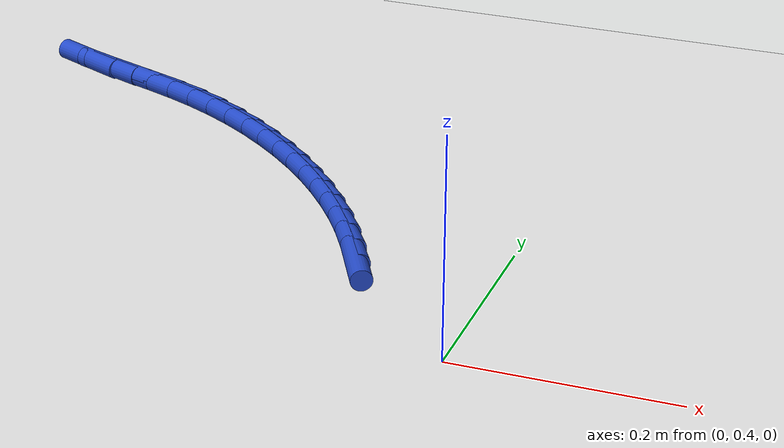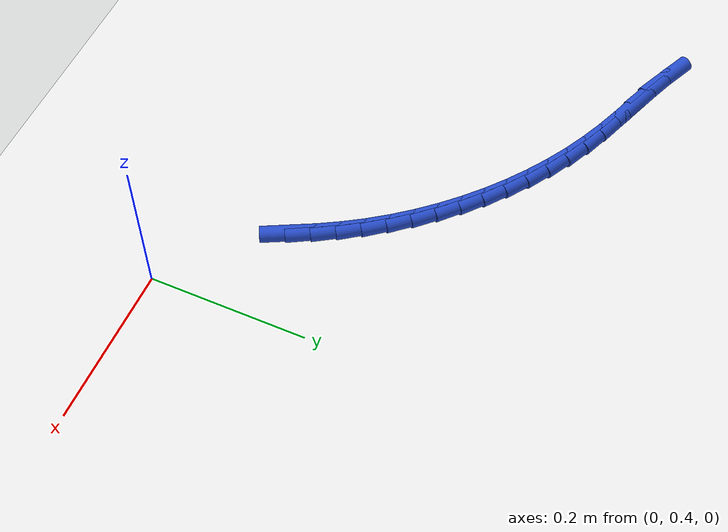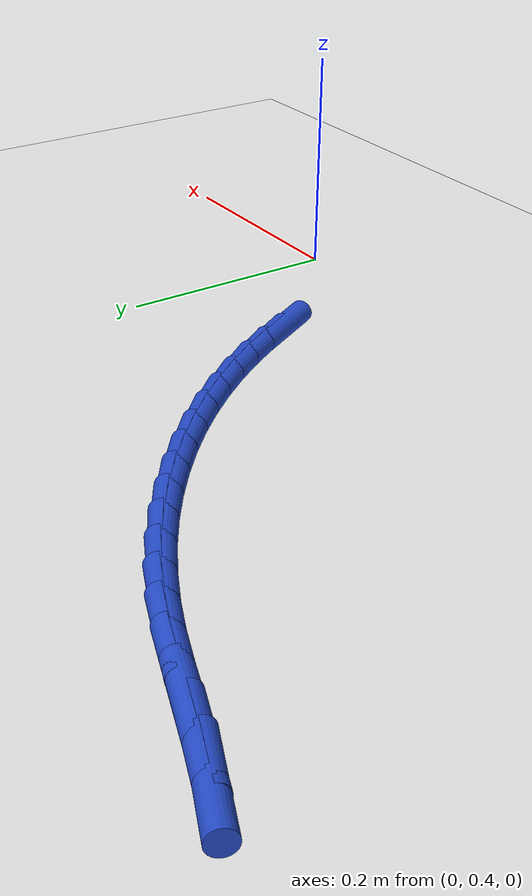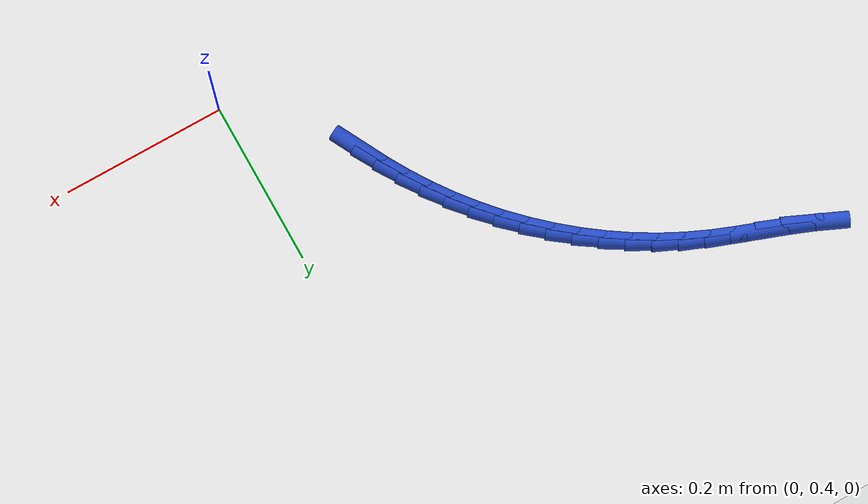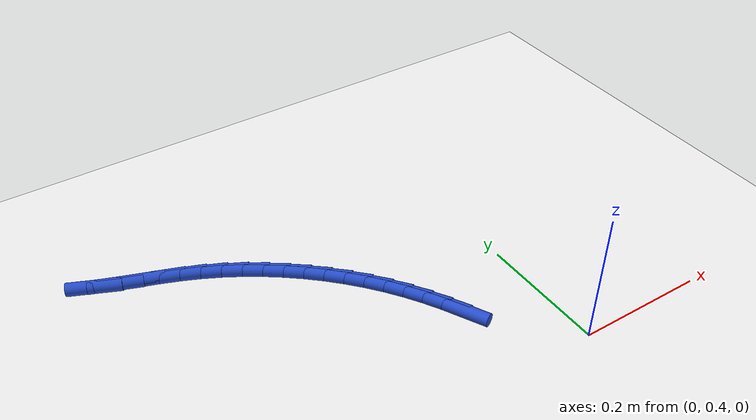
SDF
<sdf version="1.6">
 <world name="default">
  <model name="ground_plane">
   <static>1</static>
   <link name="link">
    <collision name="collision">
     <geometry><plane><normal>0 0 1</normal><size>100 100</size></plane></geometry>
     <surface><friction><ode><mu>100</mu><mu2>50</mu2></ode></friction></surface>
    </collision>
    <visual name="visual">
     <cast_shadows>0</cast_shadows>
     <geometry><plane><normal>0 0 1</normal><size>100 100</size></plane></geometry>
     <material>
      <script><uri>file://media/materials/scripts/gazebo.material</uri><name>Gazebo/WhiteGlow</name></script>
     </material>
    </visual>
   </link>
  </model>
  <model name="line">
   <link name="link_18">
    <pose>-0.12087121590674191 0.5258306479101631 0.01 0 1.57 -1.0924491869391255</pose>
    <collision name="collision">
     <geometry><cylinder><radius>0.01</radius><length>0.08</length></cylinder></geometry>
    </collision>
    <visual name="visual">
     <material>
      <script><name>Gazebo/Blue</name><uri>file://media/materials/scripts/gazebo.material</uri></script>
     </material>
     <geometry><cylinder><radius>0.01</radius><length>0.08</length></cylinder></geometry>
    </visual>
   </link>
   <link name="link_19">
    <pose>-0.13466433194934374 0.5524320018764258 0.01 0 1.57 -1.0466412151511646</pose>
    <collision name="collision">
     <geometry><cylinder><radius>0.01</radius><length>0.08</length></cylinder></geometry>
    </collision>
    <visual name="visual">
     <material>
      <script><name>Gazebo/Blue</name><uri>file://media/materials/scripts/gazebo.material</uri></script>
     </material>
     <geometry><cylinder><radius>0.01</radius><length>0.08</length></cylinder></geometry>
    </visual>
   </link>
   <link name="link_20">
    <pose>-0.1496651760401632 0.5783808760896336 0.01 0 1.57 -0.9973470188442682</pose>
    <collision name="collision">
     <geometry><cylinder><radius>0.01</radius><length>0.08</length></cylinder></geometry>
    </collision>
    <visual name="visual">
     <material>
      <script><name>Gazebo/Blue</name><uri>file://media/materials/scripts/gazebo.material</uri></script>
     </material>
     <geometry><cylinder><radius>0.01</radius><length>0.08</length></cylinder></geometry>
    </visual>
   </link>
   <link name="link_21">
    <pose>-0.16596167017055868 0.6036136711053701 0.01 0 1.57 -0.9453736026981899</pose>
    <collision name="collision">
     <geometry><cylinder><radius>0.01</radius><length>0.08</length></cylinder></geometry>
    </collision>
    <visual name="visual">
     <material>
      <script><name>Gazebo/Blue</name><uri>file://media/materials/scripts/gazebo.material</uri></script>
     </material>
     <geometry><cylinder><radius>0.01</radius><length>0.08</length></cylinder></geometry>
    </visual>
   </link>
   <link name="link_22">
    <pose>-0.18361828702493266 0.628064504447458 0.01 0 1.57 -0.8934376284578187</pose>
    <collision name="collision">
     <geometry><cylinder><radius>0.01</radius><length>0.08</length></cylinder></geometry>
    </collision>
    <visual name="visual">
     <material>
      <script><name>Gazebo/Blue</name><uri>file://media/materials/scripts/gazebo.material</uri></script>
     </material>
     <geometry><cylinder><radius>0.01</radius><length>0.08</length></cylinder></geometry>
    </visual>
   </link>
   <link name="link_23">
    <pose>-0.20259395701942093 0.6516572180119145 0.01 0 1.57 -0.8420445888615028</pose>
    <collision name="collision">
     <geometry><cylinder><radius>0.01</radius><length>0.08</length></cylinder></geometry>
    </collision>
    <visual name="visual">
     <material>
      <script><name>Gazebo/Blue</name><uri>file://media/materials/scripts/gazebo.material</uri></script>
     </material>
     <geometry><cylinder><radius>0.01</radius><length>0.08</length></cylinder></geometry>
    </visual>
   </link>
   <link name="link_24">
    <pose>-0.22281793014236864 0.6743127639991473 0.01 0 1.57 -0.7909232255327905</pose>
    <collision name="collision">
     <geometry><cylinder><radius>0.01</radius><length>0.08</length></cylinder></geometry>
    </collision>
    <visual name="visual">
     <material>
      <script><name>Gazebo/Blue</name><uri>file://media/materials/scripts/gazebo.material</uri></script>
     </material>
     <geometry><cylinder><radius>0.01</radius><length>0.08</length></cylinder></geometry>
    </visual>
   </link>
   <link name="link_25">
    <pose>-0.24421945477810603 0.6959520944533982 0.01 0 1.57 -0.7398049628768644</pose>
    <collision name="collision">
     <geometry><cylinder><radius>0.01</radius><length>0.08</length></cylinder></geometry>
    </collision>
    <visual name="visual">
     <material>
      <script><name>Gazebo/Blue</name><uri>file://media/materials/scripts/gazebo.material</uri></script>
     </material>
     <geometry><cylinder><radius>0.01</radius><length>0.08</length></cylinder></geometry>
    </visual>
   </link>
   <link name="link_26">
    <pose>-0.26672777931096314 0.7164961614189078 0.01 0 1.57 -0.688424894510176</pose>
    <collision name="collision">
     <geometry><cylinder><radius>0.01</radius><length>0.08</length></cylinder></geometry>
    </collision>
    <visual name="visual">
     <material>
      <script><name>Gazebo/Blue</name><uri>file://media/materials/scripts/gazebo.material</uri></script>
     </material>
     <geometry><cylinder><radius>0.01</radius><length>0.08</length></cylinder></geometry>
    </visual>
   </link>
   <link name="link_27">
    <pose>-0.2902721521252701 0.7358659169399174 0.01 0 1.57 -0.6365228189762627</pose>
    <collision name="collision">
     <geometry><cylinder><radius>0.01</radius><length>0.08</length></cylinder></geometry>
    </collision>
    <visual name="visual">
     <material>
      <script><name>Gazebo/Blue</name><uri>file://media/materials/scripts/gazebo.material</uri></script>
     </material>
     <geometry><cylinder><radius>0.01</radius><length>0.08</length></cylinder></geometry>
    </visual>
   </link>
   <link name="link_28">
    <pose>-0.3147818216053569 0.7539823130606679 0.01 0 1.57 -0.5838446735683452</pose>
    <collision name="collision">
     <geometry><cylinder><radius>0.01</radius><length>0.08</length></cylinder></geometry>
    </collision>
    <visual name="visual">
     <material>
      <script><name>Gazebo/Blue</name><uri>file://media/materials/scripts/gazebo.material</uri></script>
     </material>
     <geometry><cylinder><radius>0.01</radius><length>0.08</length></cylinder></geometry>
    </visual>
   </link>
   <link name="link_29">
    <pose>-0.3401860361355535 0.7707663018254001 0.01 0 1.57 -0.5301446679307832</pose>
    <collision name="collision">
     <geometry><cylinder><radius>0.01</radius><length>0.08</length></cylinder></geometry>
    </collision>
    <visual name="visual">
     <material>
      <script><name>Gazebo/Blue</name><uri>file://media/materials/scripts/gazebo.material</uri></script>
     </material>
     <geometry><cylinder><radius>0.01</radius><length>0.08</length></cylinder></geometry>
    </visual>
   </link>
   <link name="link_30">
    <pose>-0.36641404410019035 0.7861388352783555 0.01 0 1.57 -0.47518841329558575</pose>
    <collision name="collision">
     <geometry><cylinder><radius>0.01</radius><length>0.08</length></cylinder></geometry>
    </collision>
    <visual name="visual">
     <material>
      <script><name>Gazebo/Blue</name><uri>file://media/materials/scripts/gazebo.material</uri></script>
     </material>
     <geometry><cylinder><radius>0.01</radius><length>0.08</length></cylinder></geometry>
    </visual>
   </link>
   <link name="link_31">
    <pose>-0.3933950938835974 0.8000208654637748 0.01 0 1.57 -0.4190884374159416</pose>
    <collision name="collision">
     <geometry><cylinder><radius>0.01</radius><length>0.08</length></cylinder></geometry>
    </collision>
    <visual name="visual">
     <material>
      <script><name>Gazebo/Blue</name><uri>file://media/materials/scripts/gazebo.material</uri></script>
     </material>
     <geometry><cylinder><radius>0.01</radius><length>0.08</length></cylinder></geometry>
    </visual>
   </link>
   <link name="link_32">
    <pose>-0.42105552526885476 0.8123430244261538 0.01 0 1.57 -0.3726044671047308</pose>
    <collision name="collision">
     <geometry><cylinder><radius>0.01</radius><length>0.08</length></cylinder></geometry>
    </collision>
    <visual name="visual">
     <material>
      <script><name>Gazebo/Blue</name><uri>file://media/materials/scripts/gazebo.material</uri></script>
     </material>
     <geometry><cylinder><radius>0.01</radius><length>0.08</length></cylinder></geometry>
    </visual>
   </link>
   <link name="link_33">
    <pose>-0.44922615073374855 0.8233538648392147 0.01 0 1.57 -0.3488961124381519</pose>
    <collision name="collision">
     <geometry><cylinder><radius>0.01</radius><length>0.08</length></cylinder></geometry>
    </collision>
    <visual name="visual">
     <material>
      <script><name>Gazebo/Blue</name><uri>file://media/materials/scripts/gazebo.material</uri></script>
     </material>
     <geometry><cylinder><radius>0.01</radius><length>0.08</length></cylinder></geometry>
    </visual>
   </link>
   <link name="link_34">
    <pose>-0.4776229807150205 0.833684007488129 0.01 0 1.57 -0.348773443359095</pose>
    <collision name="collision">
     <geometry><cylinder><radius>0.01</radius><length>0.08</length></cylinder></geometry>
    </collision>
    <visual name="visual">
     <material>
      <script><name>Gazebo/Blue</name><uri>file://media/materials/scripts/gazebo.material</uri></script>
     </material>
     <geometry><cylinder><radius>0.01</radius><length>0.08</length></cylinder></geometry>
    </visual>
   </link>
   <link name="link_35">
    <pose>-0.5059552212323084 0.8439867186682762 0.01 0 1.57 -0.3724011202834807</pose>
    <collision name="collision">
     <geometry><cylinder><radius>0.01</radius><length>0.08</length></cylinder></geometry>
    </collision>
    <visual name="visual">
     <material>
      <script><name>Gazebo/Blue</name><uri>file://media/materials/scripts/gazebo.material</uri></script>
     </material>
     <geometry><cylinder><radius>0.01</radius><length>0.08</length></cylinder></geometry>
    </visual>
   </link>
   <link name="link_36">
    <pose>-0.5339320783052496 0.8549152646750361 0.01 0 1.57 -0.42007674654019456</pose>
    <collision name="collision">
     <geometry><cylinder><radius>0.01</radius><length>0.08</length></cylinder></geometry>
    </collision>
    <visual name="visual">
     <material>
      <script><name>Gazebo/Blue</name><uri>file://media/materials/scripts/gazebo.material</uri></script>
     </material>
     <geometry><cylinder><radius>0.01</radius><length>0.08</length></cylinder></geometry>
    </visual>
   </link>
  </model>
 </world>
</sdf>
